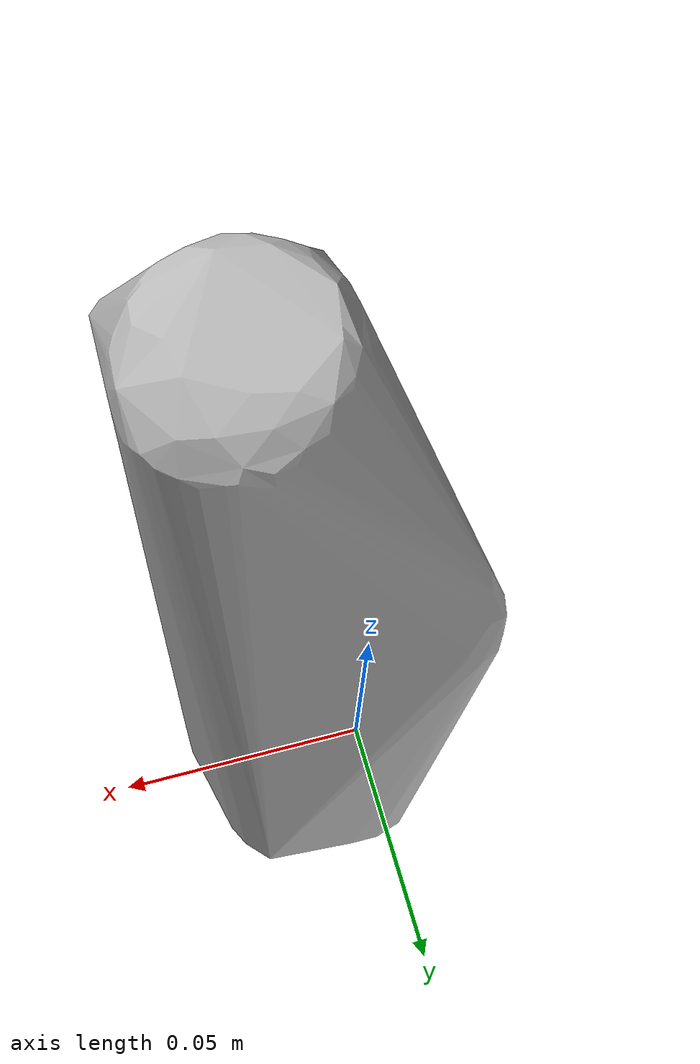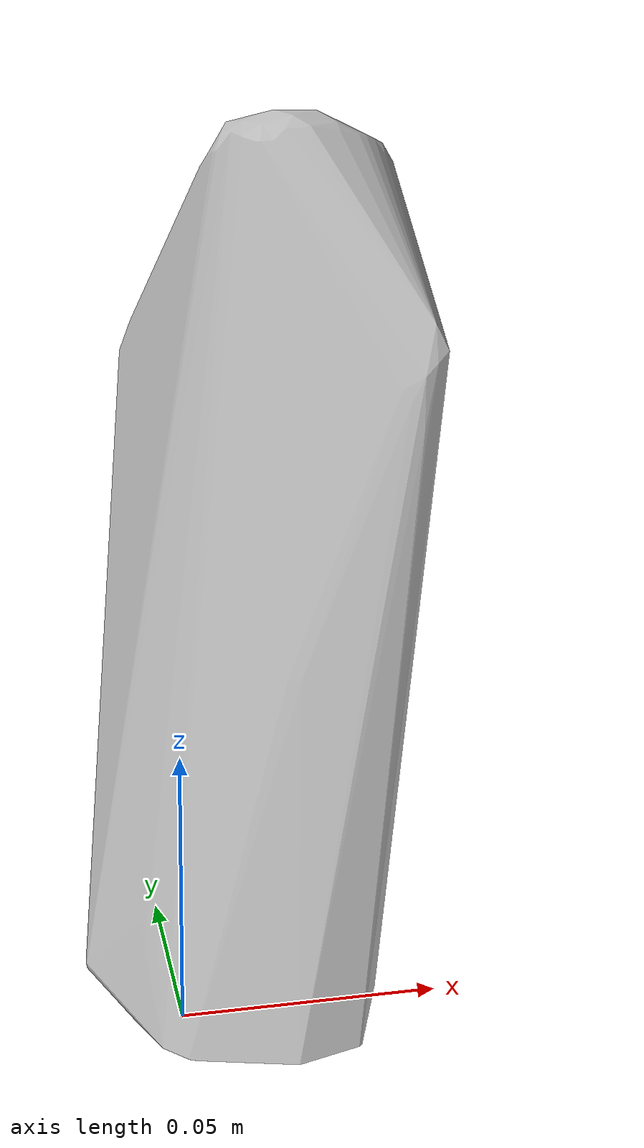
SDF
<?xml version='1.0'?>
<sdf version="1.4">
  <model name="mom_to_mom_sweet_potato_corn_apple">
    <static>false</static>
    <link name="link">
      <inertial>
        <pose>0.014535547341627562 -0.00226204999282728 0.07446477836067664 3.0990245512413934 -0.05500962104024041 -2.6076358748611175</pose>
        <mass>0.030423564437215517</mass>
        <inertia>
          <ixx>6.0506163266417455e-05</ixx>
          <ixy>-2.2293116899264846e-21</ixy>
          <ixz>-1.9394885752748392e-21</ixz>
          <iyy>5.627234439195982e-05</iyy>
          <iyz>1.0301720881167839e-20</iyz>
          <izz>1.1164040441060631e-05</izz>
        </inertia>
      </inertial>
      <collision name="collision">
        <geometry>
          <mesh>
            <!-- Use a downsampled mesh for collisions -->
            <uri>model:///mom_to_mom_sweet_potato_corn_apple/mom_to_mom_sweet_potato_corn_apple_250_collision.obj</uri>
	        </mesh>
        </geometry>
        <surface>
      </surface>
      </collision>
      <visual name="visual">
        <geometry>
          <mesh>
            <uri>model:///mom_to_mom_sweet_potato_corn_apple/optimized_tsdf_texture_mapped_mesh.obj</uri>
	        </mesh>
        </geometry>
        <material>
          <script>
            <uri>model:///mom_to_mom_sweet_potato_corn_apple/mom_to_mom_sweet_potato_corn_apple.material</uri>
            <name>mom_to_mom_sweet_potato_corn_apple</name>
          </script>
        </material>
      </visual>
    </link>
  </model>
</sdf>
